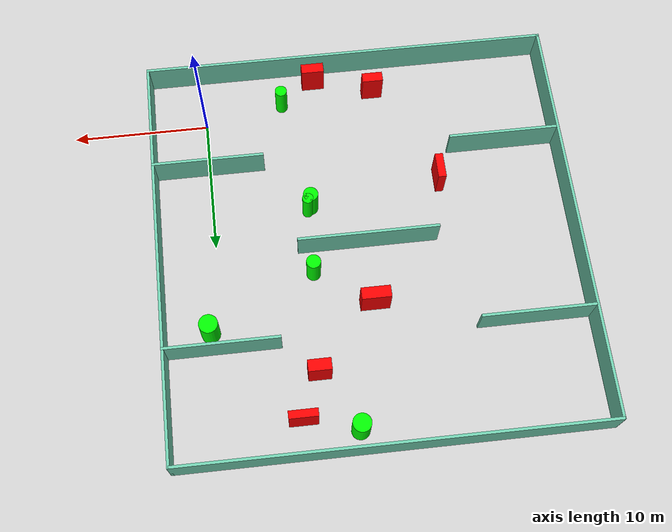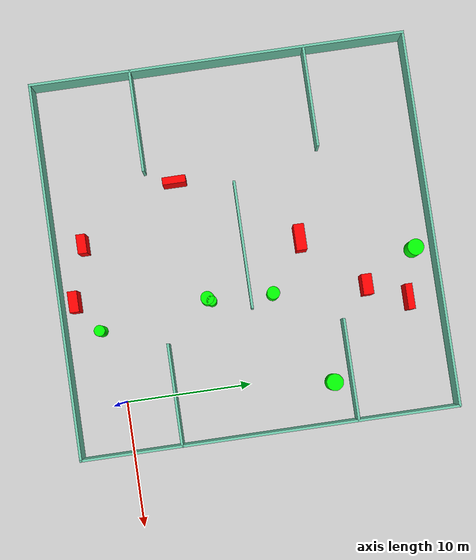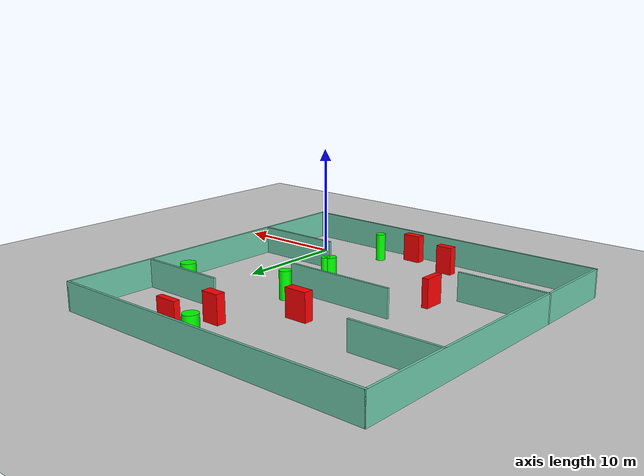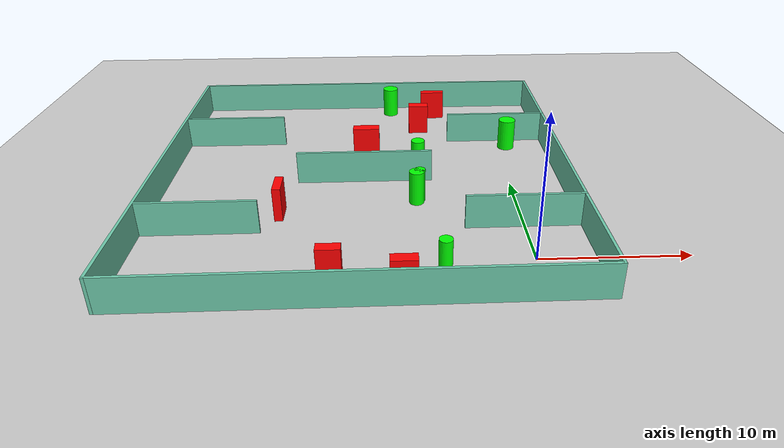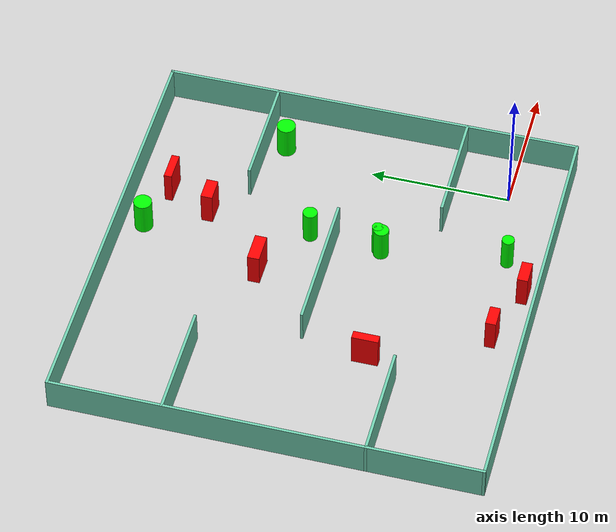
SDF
<sdf version="1.7">
 <world name="default">
  <light name="sun" type="directional">
   <pose>0 0 10 0 -0 0</pose>
   <diffuse>0.8 0.8 0.8 1</diffuse>
   <specular>0.2 0.2 0.2 1</specular>
   <attenuation>
    <range>1000</range>
    <constant>0.9</constant>
    <linear>0.01</linear>
    <quadratic>0.001</quadratic>
   </attenuation>
   <direction>-0.5 0.1 -0.9</direction>
   <spot><inner_angle>0</inner_angle><outer_angle>0</outer_angle><falloff>0</falloff></spot>
  </light>
  <model name="ground_plane">
   <static>1</static>
   <link name="link">
    <collision name="collision">
     <geometry><plane><normal>0 0 1</normal><size>100 100</size></plane></geometry>
     <surface>
      <contact><collide_bitmask>65535</collide_bitmask></contact>
      <friction><ode><mu>100</mu><mu2>50</mu2></ode></friction>
     </surface>
    </collision>
    <visual name="visual">
     <cast_shadows>0</cast_shadows>
     <geometry><plane><normal>0 0 1</normal><size>100 100</size></plane></geometry>
     <material>
      <script><uri>file://media/materials/scripts/gazebo.material</uri><name>Gazebo/Grey</name></script>
     </material>
    </visual>
   </link>
  </model>
  <gravity>0 0 -9.8</gravity>
  <magnetic_field>6e-06 2.3e-05 -4.2e-05</magnetic_field>
  <atmosphere type="adiabatic"/>
  <physics type="ode">
   <max_step_size>0.001</max_step_size>
   <real_time_factor>1</real_time_factor>
   <real_time_update_rate>1000</real_time_update_rate>
  </physics>
  <scene><ambient>0.4 0.4 0.4 1</ambient><background>0.7 0.7 0.7 1</background><shadows>1</shadows></scene>
  <spherical_coordinates>
   <surface_model>EARTH_WGS84</surface_model>
   <latitude_deg>0</latitude_deg>
   <longitude_deg>0</longitude_deg>
   <elevation>0</elevation>
   <heading_deg>0</heading_deg>
  </spherical_coordinates>
  <model name="my_base_walls">
   <link name="Wall_10">
    <collision name="Wall_10_Collision">
     <geometry><box><size>8.2 0.2 2.5</size></box></geometry>
     <pose>0 0 1.25 0 -0 0</pose>
    </collision>
    <visual name="Wall_10_Visual">
     <pose>0 0 1.25 0 -0 0</pose>
     <geometry><box><size>8.2 0.2 2.5</size></box></geometry>
     <material>
      <script><uri>file://media/materials/scripts/gazebo.material</uri><name>Gazebo/Grey</name></script>
      <ambient>0.435294 0.796078 0.67451 1</ambient>
     </material>
     <meta><layer>0</layer></meta>
    </visual>
    <pose>-11 -7 0 0 -0 0</pose>
   </link>
   <link name="Wall_12">
    <collision name="Wall_12_Collision">
     <geometry><box><size>8.2 0.2 2.5</size></box></geometry>
     <pose>0 0 1.25 0 -0 0</pose>
    </collision>
    <visual name="Wall_12_Visual">
     <pose>0 0 1.25 0 -0 0</pose>
     <geometry><box><size>8.2 0.2 2.5</size></box></geometry>
     <material>
      <script><uri>file://media/materials/scripts/gazebo.material</uri><name>Gazebo/Grey</name></script>
      <ambient>0.435294 0.796078 0.67451 1</ambient>
     </material>
     <meta><layer>0</layer></meta>
    </visual>
    <pose>-11 7 0 0 -0 0</pose>
   </link>
   <link name="Wall_14">
    <collision name="Wall_14_Collision">
     <geometry><box><size>8.2 0.2 2.5</size></box></geometry>
     <pose>0 0 1.25 0 -0 0</pose>
    </collision>
    <visual name="Wall_14_Visual">
     <pose>0 0 1.25 0 -0 0</pose>
     <geometry><box><size>8.2 0.2 2.5</size></box></geometry>
     <material>
      <script><uri>file://media/materials/scripts/gazebo.material</uri><name>Gazebo/Grey</name></script>
      <ambient>0.435294 0.796078 0.67451 1</ambient>
     </material>
     <meta><layer>0</layer></meta>
    </visual>
    <pose>11 7 0 0 -0 3.14159</pose>
   </link>
   <link name="Wall_16">
    <collision name="Wall_16_Collision">
     <geometry><box><size>10.2 0.2 2.5</size></box></geometry>
     <pose>0 0 1.25 0 -0 0</pose>
    </collision>
    <visual name="Wall_16_Visual">
     <pose>0 0 1.25 0 -0 0</pose>
     <geometry><box><size>10.2 0.2 2.5</size></box></geometry>
     <material>
      <script><uri>file://media/materials/scripts/gazebo.material</uri><name>Gazebo/Grey</name></script>
      <ambient>0.435294 0.796078 0.67451 1</ambient>
     </material>
     <meta><layer>0</layer></meta>
    </visual>
    <pose>0 0 0 0 -0 3.14159</pose>
   </link>
   <link name="Wall_2">
    <collision name="Wall_2_Collision">
     <geometry><box><size>30.2 0.2 2.5</size></box></geometry>
     <pose>0 0 1.25 0 -0 0</pose>
    </collision>
    <visual name="Wall_2_Visual">
     <pose>0 0 1.25 0 -0 0</pose>
     <geometry><box><size>30.2 0.2 2.5</size></box></geometry>
     <material>
      <script><uri>file://media/materials/scripts/gazebo.material</uri><name>Gazebo/Grey</name></script>
      <ambient>0.435294 0.796078 0.67451 1</ambient>
     </material>
     <meta><layer>0</layer></meta>
    </visual>
    <pose>0 -15 0 0 -0 3.14159</pose>
   </link>
   <link name="Wall_3">
    <collision name="Wall_3_Collision">
     <geometry><box><size>30.2 0.2 2.5</size></box></geometry>
     <pose>0 0 1.25 0 -0 0</pose>
    </collision>
    <visual name="Wall_3_Visual">
     <pose>0 0 1.25 0 -0 0</pose>
     <geometry><box><size>30.2 0.2 2.5</size></box></geometry>
     <material>
      <script><uri>file://media/materials/scripts/gazebo.material</uri><name>Gazebo/Grey</name></script>
      <ambient>0.435294 0.796078 0.67451 1</ambient>
     </material>
     <meta><layer>0</layer></meta>
    </visual>
    <pose>-15 0 0 0 -0 1.5708</pose>
   </link>
   <link name="Wall_4">
    <collision name="Wall_4_Collision">
     <geometry><box><size>30.2 0.2 2.5</size></box></geometry>
     <pose>0 0 1.25 0 -0 0</pose>
    </collision>
    <visual name="Wall_4_Visual">
     <pose>0 0 1.25 0 -0 0</pose>
     <geometry><box><size>30.2 0.2 2.5</size></box></geometry>
     <material>
      <script><uri>file://media/materials/scripts/gazebo.material</uri><name>Gazebo/Grey</name></script>
      <ambient>0.435294 0.796078 0.67451 1</ambient>
     </material>
     <meta><layer>0</layer></meta>
    </visual>
    <pose>0 15 0 0 -0 0</pose>
   </link>
   <link name="Wall_6">
    <collision name="Wall_6_Collision">
     <geometry><box><size>30.2 0.2 2.5</size></box></geometry>
     <pose>0 0 1.25 0 -0 0</pose>
    </collision>
    <visual name="Wall_6_Visual">
     <pose>0 0 1.25 0 -0 0</pose>
     <geometry><box><size>30.2 0.2 2.5</size></box></geometry>
     <material>
      <script><uri>file://media/materials/scripts/gazebo.material</uri><name>Gazebo/Grey</name></script>
      <ambient>0.435294 0.796078 0.67451 1</ambient>
     </material>
     <meta><layer>0</layer></meta>
    </visual>
    <pose>15 0 0 0 -0 1.5708</pose>
   </link>
   <link name="Wall_8">
    <collision name="Wall_8_Collision">
     <geometry><box><size>8.2 0.2 2.5</size></box></geometry>
     <pose>0 0 1.25 0 -0 0</pose>
    </collision>
    <visual name="Wall_8_Visual">
     <pose>0 0 1.25 0 -0 0</pose>
     <geometry><box><size>8.2 0.2 2.5</size></box></geometry>
     <material>
      <script><uri>file://media/materials/scripts/gazebo.material</uri><name>Gazebo/Grey</name></script>
      <ambient>0.435294 0.796078 0.67451 1</ambient>
     </material>
     <meta><layer>0</layer></meta>
    </visual>
    <pose>11 -7 0 0 -0 3.14159</pose>
   </link>
   <static>1</static>
   <pose>-11 11 0 0 -0 0</pose>
  </model>
  <model name="cylinder1">
   <static>1</static>
   <link name="link">
    <inertial>
     <mass>1</mass>
     <inertia><ixx>0.5</ixx><ixy>0</ixy><ixz>0</ixz><iyy>0.5</iyy><iyz>0</iyz><izz>1</izz></inertia>
    </inertial>
    <collision name="collision">
     <geometry><cylinder><radius>0.4409655561556481</radius><length>2.5</length></cylinder></geometry>
    </collision>
    <visual name="visual">
     <geometry><cylinder><radius>0.4409655561556481</radius><length>2.5</length></cylinder></geometry>
     <material>
      <ambient>0 1 0 1</ambient>
      <diffuse>0 1 0 1</diffuse>
      <specular>0.1 0.1 0.1 1</specular>
      <emissive>0 0 0 0</emissive>
     </material>
    </visual>
   </link>
   <pose>-5.871929750679879 -1.156754572791102 1.25 0 0 0</pose>
  </model>
  <model name="cylinder2">
   <static>1</static>
   <link name="link">
    <inertial>
     <mass>1</mass>
     <inertia><ixx>0.5</ixx><ixy>0</ixy><ixz>0</ixz><iyy>0.5</iyy><iyz>0</iyz><izz>1</izz></inertia>
    </inertial>
    <collision name="collision">
     <geometry><cylinder><radius>0.6509376109367315</radius><length>2.5</length></cylinder></geometry>
    </collision>
    <visual name="visual">
     <geometry><cylinder><radius>0.6509376109367315</radius><length>2.5</length></cylinder></geometry>
     <material>
      <ambient>0 1 0 1</ambient>
      <diffuse>0 1 0 1</diffuse>
      <specular>0.1 0.1 0.1 1</specular>
      <emissive>0 0 0 0</emissive>
     </material>
    </visual>
   </link>
   <pose>-8.83507197646754 24.449109205225803 1.25 0 0 0</pose>
  </model>
  <model name="cylinder3">
   <static>1</static>
   <link name="link">
    <inertial>
     <mass>1</mass>
     <inertia><ixx>0.5</ixx><ixy>0</ixy><ixz>0</ixz><iyy>0.5</iyy><iyz>0</iyz><izz>1</izz></inertia>
    </inertial>
    <collision name="collision">
     <geometry><cylinder><radius>0.5158077785276817</radius><length>2.5</length></cylinder></geometry>
    </collision>
    <visual name="visual">
     <geometry><cylinder><radius>0.5158077785276817</radius><length>2.5</length></cylinder></geometry>
     <material>
      <ambient>0 1 0 1</ambient>
      <diffuse>0 1 0 1</diffuse>
      <specular>0.1 0.1 0.1 1</specular>
      <emissive>0 0 0 0</emissive>
     </material>
    </visual>
   </link>
   <pose>-6.862101979433962 12.80730587537319 1.25 0 0 0</pose>
  </model>
  <model name="cylinder4">
   <static>1</static>
   <link name="link">
    <inertial>
     <mass>1</mass>
     <inertia><ixx>0.5</ixx><ixy>0</ixy><ixz>0</ixz><iyy>0.5</iyy><iyz>0</iyz><izz>1</izz></inertia>
    </inertial>
    <collision name="collision">
     <geometry><cylinder><radius>0.6716507007575563</radius><length>2.5</length></cylinder></geometry>
    </collision>
    <visual name="visual">
     <geometry><cylinder><radius>0.6716507007575563</radius><length>2.5</length></cylinder></geometry>
     <material>
      <ambient>0 1 0 1</ambient>
      <diffuse>0 1 0 1</diffuse>
      <specular>0.1 0.1 0.1 1</specular>
      <emissive>0 0 0 0</emissive>
     </material>
    </visual>
   </link>
   <pose>0.7863690733165072 16.57963958009924 1.25 0 0 0</pose>
  </model>
  <model name="cylinder5">
   <static>1</static>
   <link name="link">
    <inertial>
     <mass>1</mass>
     <inertia><ixx>0.5</ixx><ixy>0</ixy><ixz>0</ixz><iyy>0.5</iyy><iyz>0</iyz><izz>1</izz></inertia>
    </inertial>
    <collision name="collision">
     <geometry><cylinder><radius>0.5400679132837969</radius><length>2.5</length></cylinder></geometry>
    </collision>
    <visual name="visual">
     <geometry><cylinder><radius>0.5400679132837969</radius><length>2.5</length></cylinder></geometry>
     <material>
      <ambient>0 1 0 1</ambient>
      <diffuse>0 1 0 1</diffuse>
      <specular>0.1 0.1 0.1 1</specular>
      <emissive>0 0 0 0</emissive>
     </material>
    </visual>
   </link>
   <pose>-7.205997990802015 7.598637721010366 1.25 0 0 0</pose>
  </model>
  <model name="cylinder6">
   <static>1</static>
   <link name="link">
    <inertial>
     <mass>1</mass>
     <inertia><ixx>0.5</ixx><ixy>0</ixy><ixz>0</ixz><iyy>0.5</iyy><iyz>0</iyz><izz>1</izz></inertia>
    </inertial>
    <collision name="collision">
     <geometry><cylinder><radius>0.3978413250000002</radius><length>2.5</length></cylinder></geometry>
    </collision>
    <visual name="visual">
     <geometry><cylinder><radius>0.3978413250000002</radius><length>2.5</length></cylinder></geometry>
     <material>
      <ambient>0 1 0 1</ambient>
      <diffuse>0 1 0 1</diffuse>
      <specular>0.1 0.1 0.1 1</specular>
      <emissive>0 0 0 0</emissive>
     </material>
    </visual>
   </link>
   <pose>-6.966235131052706 7.909014441438334 1.25 0 0 0</pose>
  </model>
  <model name="box1">
   <static>1</static>
   <link name="link">
    <inertial>
     <mass>1</mass>
     <inertia><ixx>0.083</ixx><ixy>0</ixy><ixz>0</ixz><iyy>0.083</iyy><iyz>0</iyz><izz>0.083</izz></inertia>
    </inertial>
    <collision name="collision">
     <geometry><box><size>1.6785605024136696 0.7614385356699964 2.5</size></box></geometry>
    </collision>
    <visual name="visual">
     <geometry><box><size>1.6785605024136696 0.7614385356699964 2.5</size></box></geometry>
     <material>
      <ambient>1 0 0 1</ambient>
      <diffuse>1 0 0 1</diffuse>
      <specular>0.1 0.1 0.1 1</specular>
      <emissive>0 0 0 0</emissive>
     </material>
    </visual>
    <sensor name="my_contact" type="contact">
     <contact><collision>box_collision</collision><topic>__default_topic__</topic></contact>
    </sensor>
   </link>
   <pose>-8.430863108664674 -2.9028384772236455 1.25 0 0 0</pose>
  </model>
  <model name="box2">
   <static>1</static>
   <link name="link">
    <inertial>
     <mass>1</mass>
     <inertia><ixx>0.083</ixx><ixy>0</ixy><ixz>0</ixz><iyy>0.083</iyy><iyz>0</iyz><izz>0.083</izz></inertia>
    </inertial>
    <collision name="collision">
     <geometry><box><size>0.5855193435899093 1.8650474493818483 2.5</size></box></geometry>
    </collision>
    <visual name="visual">
     <geometry><box><size>0.5855193435899093 1.8650474493818483 2.5</size></box></geometry>
     <material>
      <ambient>1 0 0 1</ambient>
      <diffuse>1 0 0 1</diffuse>
      <specular>0.1 0.1 0.1 1</specular>
      <emissive>0 0 0 0</emissive>
     </material>
    </visual>
    <sensor name="my_contact" type="contact">
     <contact><collision>box_collision</collision><topic>__default_topic__</topic></contact>
    </sensor>
   </link>
   <pose>-16.86654195814714 6.2938956794452 1.25 0 0 0</pose>
  </model>
  <model name="box3">
   <static>1</static>
   <link name="link">
    <inertial>
     <mass>1</mass>
     <inertia><ixx>0.083</ixx><ixy>0</ixy><ixz>0</ixz><iyy>0.083</iyy><iyz>0</iyz><izz>0.083</izz></inertia>
    </inertial>
    <collision name="collision">
     <geometry><box><size>2.0954096905573296 0.8490758280908326 2.5</size></box></geometry>
    </collision>
    <visual name="visual">
     <geometry><box><size>2.0954096905573296 0.8490758280908326 2.5</size></box></geometry>
     <material>
      <ambient>1 0 0 1</ambient>
      <diffuse>1 0 0 1</diffuse>
      <specular>0.1 0.1 0.1 1</specular>
      <emissive>0 0 0 0</emissive>
     </material>
    </visual>
    <sensor name="my_contact" type="contact">
     <contact><collision>box_collision</collision><topic>__default_topic__</topic></contact>
    </sensor>
   </link>
   <pose>-10.934989856310596 15.541230424607676 1.25 0 0 0</pose>
  </model>
  <model name="box4">
   <static>1</static>
   <link name="link">
    <inertial>
     <mass>1</mass>
     <inertia><ixx>0.083</ixx><ixy>0</ixy><ixz>0</ixz><iyy>0.083</iyy><iyz>0</iyz><izz>0.083</izz></inertia>
    </inertial>
    <collision name="collision">
     <geometry><box><size>1.5277046791827926 0.734437109713448 2.5</size></box></geometry>
    </collision>
    <visual name="visual">
     <geometry><box><size>1.5277046791827926 0.734437109713448 2.5</size></box></geometry>
     <material>
      <ambient>1 0 0 1</ambient>
      <diffuse>1 0 0 1</diffuse>
      <specular>0.1 0.1 0.1 1</specular>
      <emissive>0 0 0 0</emissive>
     </material>
    </visual>
    <sensor name="my_contact" type="contact">
     <contact><collision>box_collision</collision><topic>__default_topic__</topic></contact>
    </sensor>
   </link>
   <pose>-12.871007261456644 -1.6377227911395695 1.25 0 0 0</pose>
  </model>
  <model name="box5">
   <static>1</static>
   <link name="link">
    <inertial>
     <mass>1</mass>
     <inertia><ixx>0.083</ixx><ixy>0</ixy><ixz>0</ixz><iyy>0.083</iyy><iyz>0</iyz><izz>0.083</izz></inertia>
    </inertial>
    <collision name="collision">
     <geometry><box><size>2.034442935814277 0.5595776479662219 2.5</size></box></geometry>
    </collision>
    <visual name="visual">
     <geometry><box><size>2.034442935814277 0.5595776479662219 2.5</size></box></geometry>
     <material>
      <ambient>1 0 0 1</ambient>
      <diffuse>1 0 0 1</diffuse>
      <specular>0.1 0.1 0.1 1</specular>
      <emissive>0 0 0 0</emissive>
     </material>
    </visual>
    <sensor name="my_contact" type="contact">
     <contact><collision>box_collision</collision><topic>__default_topic__</topic></contact>
    </sensor>
   </link>
   <pose>-5.05294668625001 23.43098754236427 1.25 0 0 0</pose>
  </model>
  <model name="box6">
   <static>1</static>
   <link name="link">
    <inertial>
     <mass>1</mass>
     <inertia><ixx>0.083</ixx><ixy>0</ixy><ixz>0</ixz><iyy>0.083</iyy><iyz>0</iyz><izz>0.083</izz></inertia>
    </inertial>
    <collision name="collision">
     <geometry><box><size>1.6365959410602946 0.8318349674817477 2.5</size></box></geometry>
    </collision>
    <visual name="visual">
     <geometry><box><size>1.6365959410602946 0.8318349674817477 2.5</size></box></geometry>
     <material>
      <ambient>1 0 0 1</ambient>
      <diffuse>1 0 0 1</diffuse>
      <specular>0.1 0.1 0.1 1</specular>
      <emissive>0 0 0 0</emissive>
     </material>
    </visual>
    <sensor name="my_contact" type="contact">
     <contact><collision>box_collision</collision><topic>__default_topic__</topic></contact>
    </sensor>
   </link>
   <pose>-6.485470255572817 20.243439393158017 1.25 0 0 0</pose>
  </model>
 </world>
</sdf>
